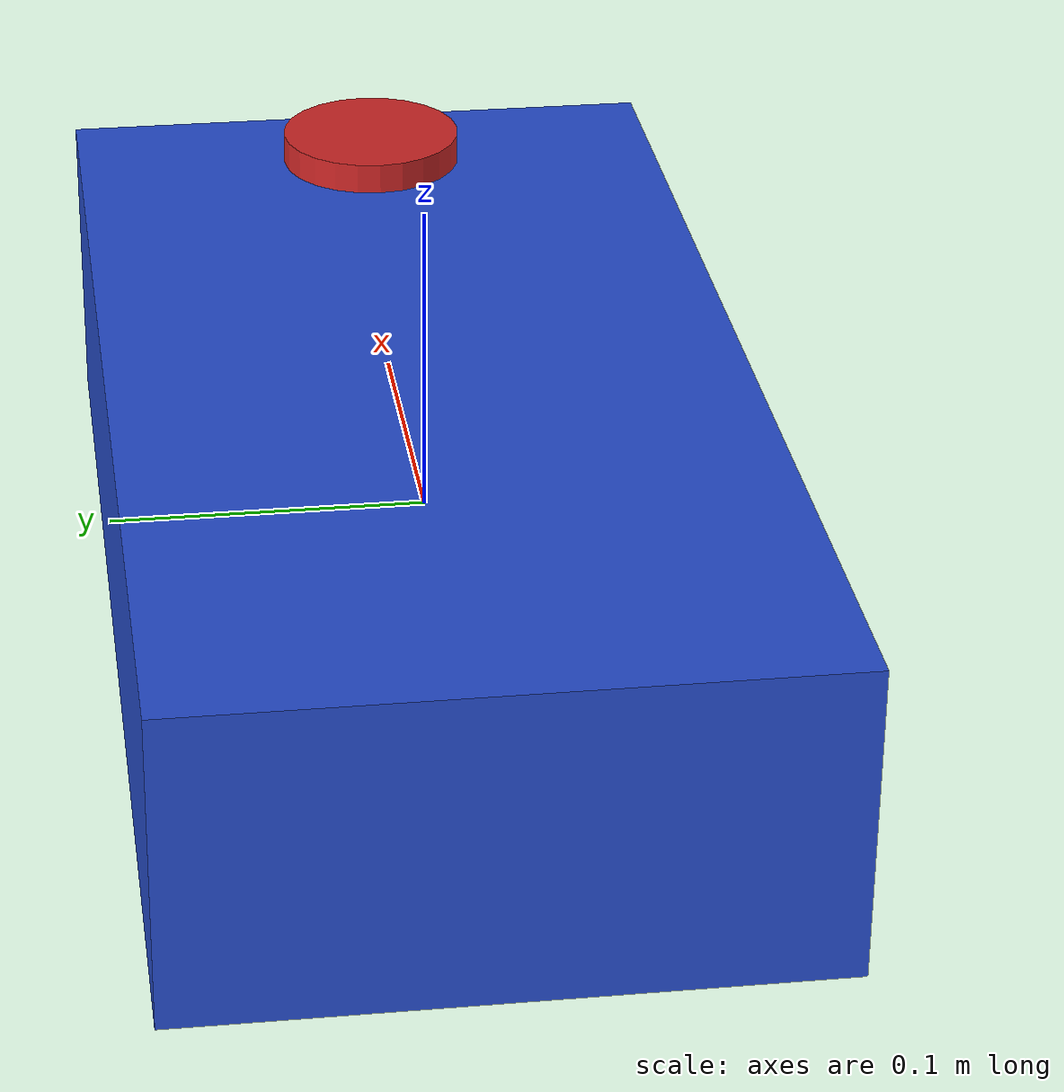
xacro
<?xml version="1.0"?>
<robot xmlns:xacro="http://www.ros.org/wiki/xacro">

  <xacro:include filename="$(find echowalker_description)/urdf/echowalker_inertia.xacro" />

  <!-- Robot Base Parameters -->
  <xacro:property name="base_length" value="0.4" />
  <xacro:property name="base_width" value="0.2" />
  <xacro:property name="base_height" value="0.1" />
  <xacro:property name="base_mass" value="3.0" />

  <!-- Base Link -->
  <link name="base_link">
    <visual>
      <origin xyz="0 0 0" rpy="0 0 0"/>
      <geometry>
        <box size="${base_length} ${base_width} ${base_height}"/>
      </geometry>
      <material name="blue"/>
    </visual>
    <collision>
      <origin xyz="0 0 0" rpy="0 0 0"/>
      <geometry>
        <box size="${base_length} ${base_width} ${base_height}"/>
      </geometry>
    </collision>
    <inertial>
      <origin xyz="0 0 0" rpy="0 0 0"/>
      <mass value="${base_mass}"/>
      <xacro:box_inertia m="${base_mass}" x="${base_length}" y="${base_width}" z="${base_height}"/>
    </inertial>
  </link>

  <!-- Sound Sensor Link -->
  <link name="sound_sensor">
    <visual>
      <origin xyz="0 0 0" rpy="0 0 0"/>
      <geometry>
        <cylinder radius="0.03" length="0.01"/>
      </geometry>
      <material name="red"/>
    </visual>
    <collision>
      <origin xyz="0 0 0" rpy="0 0 0"/>
      <geometry>
        <cylinder radius="0.03" length="0.01"/>
      </geometry>
    </collision>
    <inertial>
      <origin xyz="0 0 0" rpy="0 0 0"/>
      <mass value="0.01"/>
      <xacro:cylinder_inertia m="0.01" r="0.03" h="0.01"/>
    </inertial>
  </link>

  <!-- Sound Sensor Joint -->
  <joint name="base_to_sound_sensor" type="fixed">
    <parent link="base_link"/>
    <child link="sound_sensor"/>
    <origin xyz="${base_length/2 - 0.05} 0 ${base_height/2 + 0.01}" rpy="0 0 0"/>
  </joint>

</robot>

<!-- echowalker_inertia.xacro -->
<robot xmlns:xacro="http://www.ros.org/wiki/xacro">
  <!-- Macro for inertia matrix -->
  <xacro:macro name="box_inertia" params="m x y z">
    <inertia
      ixx="${m*(y*y+z*z)/12}" ixy="0" ixz="0"
      iyy="${m*(x*x+z*z)/12}" iyz="0"
      izz="${m*(x*x+y*y)/12}"
    />
  </xacro:macro>

  <xacro:macro name="cylinder_inertia" params="m r h">
    <inertia
      ixx="${m*(3*r*r+h*h)/12}" ixy="0" ixz="0"
      iyy="${m*(3*r*r+h*h)/12}" iyz="0"
      izz="${m*r*r/2}"
    />
  </xacro:macro>
</robot>
